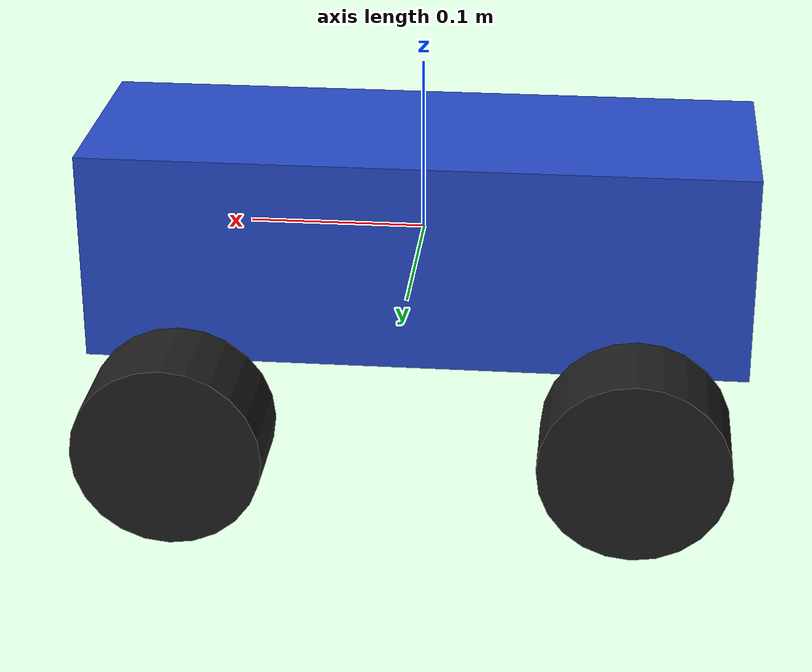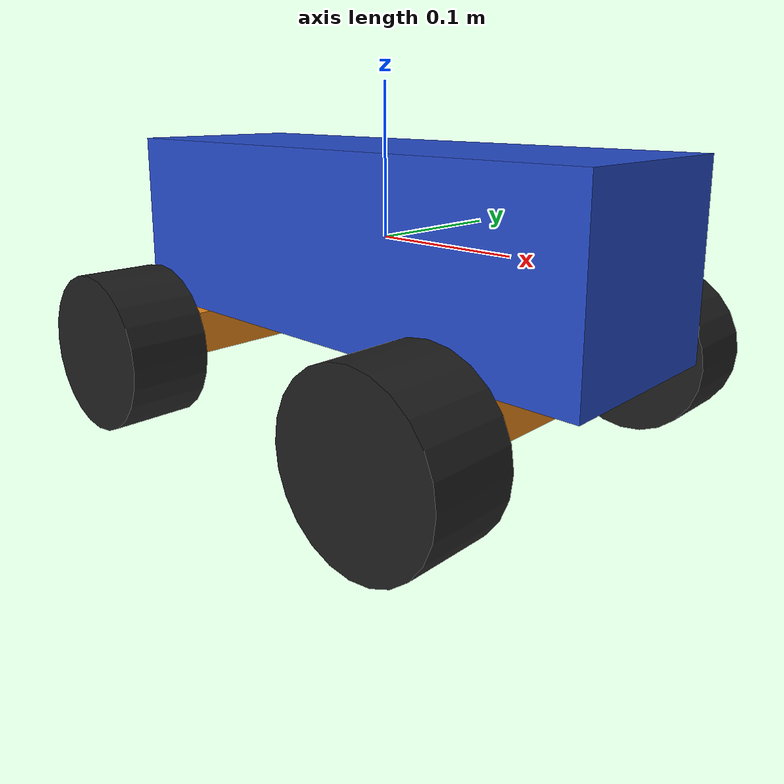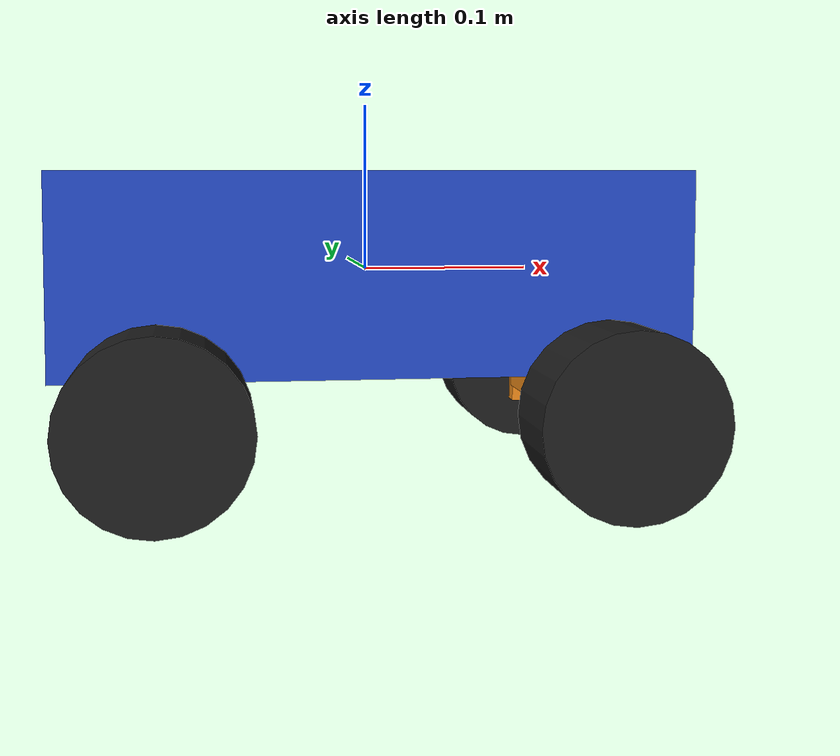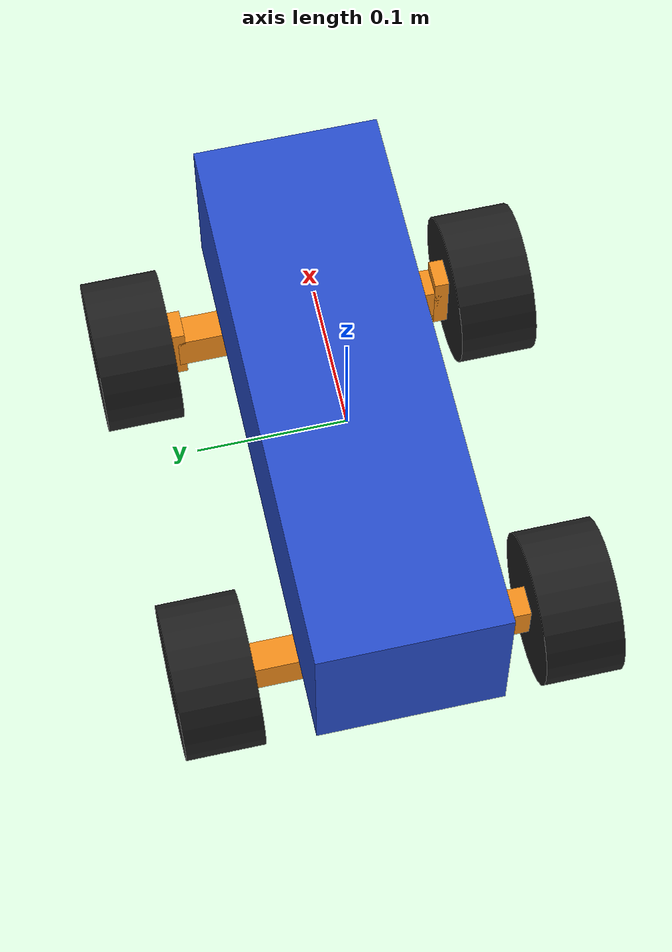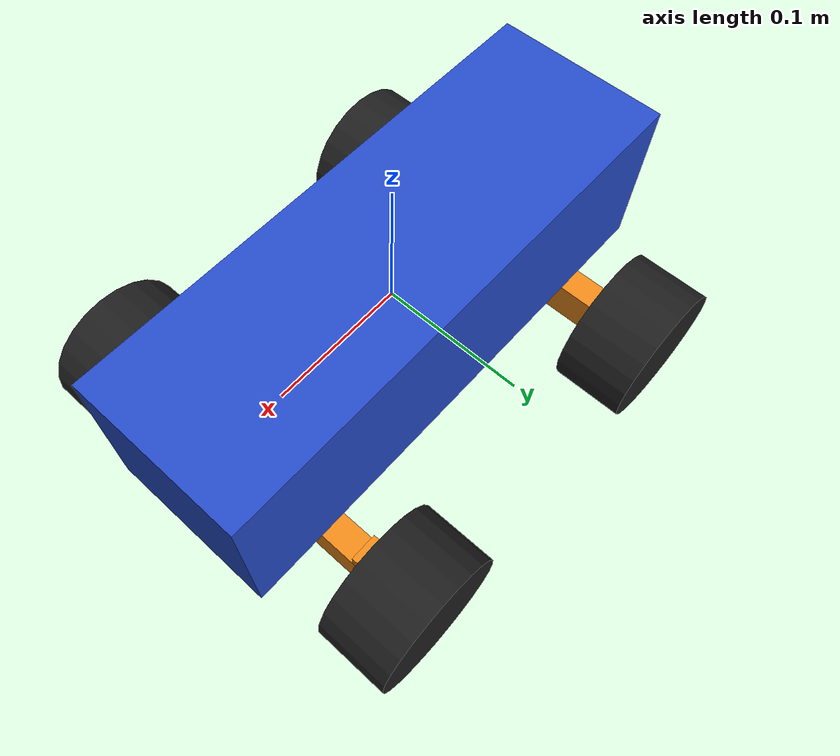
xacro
<?xml version="1.0"?>
<robot xmlns:xacro="http://www.ros.org/wiki/xacro">

    <!-- Example link -->
    <xacro:include filename="inertial_macros.xacro"/>

    <xacro:property name="rad_w" value="0.052"/>
    <xacro:property name="le_w" value="0.053"/>
    <xacro:property name="ly" value="0.125"/>
    <xacro:property name="lx" value="0.375"/>
    <xacro:property name="lz" value="0.12"/>
    <xacro:property name="lx_st" value="0.02"/>
    <xacro:property name="ly_st" value="${ly*3/2}"/>
    <xacro:property name="lz_st" value="0.03 "/>
    <xacro:property name="lx_arm" value="0.02"/>
    <xacro:property name="ly_arm" value="${0.01}"/>
    <xacro:property name="lz_arm" value="0.05"/>

    <xacro:macro name="box_macro" params="
      name
      x y z
      mass
      material">

    <link name="${name}">
      <visual>
        <origin xyz="0 0 0" rpy="0 0 0"/>
        <geometry>
          <box size="${x} ${y} ${z}"/>
        </geometry>
        <material name="${material}"/>
      </visual>

      <collision>
        <origin xyz="0 0 0" rpy="0 0 0"/>
        <geometry>
          <box size="${x} ${y} ${z}"/>
        </geometry>
      </collision>

      <xacro:inertial_box mass="${mass}" x="${x}" y="${y}" z="${z}">
        <origin xyz="0 0 0" rpy="0 0 0"/>
      </xacro:inertial_box>
    </link>
    </xacro:macro>

    <xacro:macro name="wheel_macro" params="
      name
      radius
      width
      mass
      material">

    <link name="${name}">
      <visual>
        <origin xyz="0 0 0" rpy="0 0 0"/>
        <geometry>
          <cylinder radius="${radius}" length="${width}"/>
        </geometry>
        <material name="${material}"/>
      </visual>

      <collision>
        <origin xyz="0 0 0" rpy="0 0 0"/>
        <geometry>
          <cylinder radius="${radius}" length="${width}"/>
        </geometry>
      </collision>

      <xacro:inertial_cylinder
          mass="${mass}"
          radius="${radius}"
          length="${width}">
        <origin xyz="0 0 0" rpy="0 0 0"/>
      </xacro:inertial_cylinder>
    </link>

  </xacro:macro>

    <!-- Example link -->
    <link name="base_link">
    </link>

    <joint name="base_link_joint" type="fixed">
        <parent link="base_link"/>
        <child link="chassis"/>
        <origin xyz="0 0 0"/>
    </joint>

    <!-- chassis link -->
    <xacro:box_macro
    name="chassis"
    x="${lx}"
    y="${ly}"
    z="${lz}"
    mass="5.0"
    material="blue"/>

        <!-- steering link joint -->
    <joint name="steering_link_joint" type="fixed">
        <parent link="chassis"/>
        <child link="steering"/>
        <origin xyz="${lx/3} 0.0 -${(lz + lz_st)/2}" rpy="0 0 0"/>
        <axis xyz="0 0 1"/>
        <dynamics damping="0.2" friction="0.0"/>
    </joint>

      <!-- Steering link -->
    <xacro:box_macro
    name="steering"
    x="${lx_st}"
    y="${ly_st}"
    z="${lz_st}"
    mass="1.0"
    material="orange"/>

    <!-- non-steering link joint -->
    <joint name="nonsteering_link_joint" type="fixed">
        <parent link="chassis"/>
        <child link="nonsteering"/>
        <origin xyz="-${lx/3} 0.0 -${(lz + lz_st)/2}" rpy="0 0 0"/>
        <axis xyz="0 0 1"/>
        <dynamics damping="0.2" friction="0.0"/>
    </joint>

      <!-- Nonsteering link -->
    <xacro:box_macro
    name="nonsteering"
    x="${lx_st}"
    y="${ly_st}"
    z="${lz_st}"
    mass="1.0"
    material="orange"/>

    <!-- Steering arm left joint-->
    <joint name="left_steering_arm_joint" type="revolute">
        <parent link="steering"/>
        <child link="left_steering_arm"/>
        <origin xyz="0 ${ly_st/2} 0"/>
        <axis xyz="0 0 1"/>
        <limit lower="-0.6" upper="0.6" effort="10" velocity="1"/>
    </joint>

    <!-- Steering arm front left -->
    <xacro:box_macro
    name="left_steering_arm"
    x="${lx_arm}"
    y="${ly_arm}"
    z="${lz_arm}"
    mass="1.0"
    material="orange"/>

    <!-- left front wheel joint -->
    <joint name="left_front_wheel_spinning_joint" type="continuous">
        <parent link="left_steering_arm"/>
        <child link="left_front_wheel"/>
        <origin xyz="0.0 ${ly_arm/2+le_w/2} 0.0" rpy="-${pi/2} 0 0"/>
        <axis xyz="0 0 1"/>
        <dynamics damping="0.2" friction="0.0"/>
    </joint>

    <!-- left front wheel link -->
    <xacro:wheel_macro
    name="left_front_wheel"
    radius="${rad_w}"
    width="${le_w}"
    mass="0.1"
    material="black"/>

        <!-- left back wheel joint -->
    <joint name="left_back_wheel_joint" type="continuous">
        <parent link="nonsteering"/>
        <child link="left_back_wheel"/>
        <origin xyz="0.0 ${ly_st/2+le_w/2} 0.0" rpy="-${pi/2} 0 0"/>
        <axis xyz="0 0 1"/>
        <dynamics damping="0.2" friction="0.0"/>
    </joint>

    <!-- left back wheel link -->
    <xacro:wheel_macro
    name="left_back_wheel"
    radius="${rad_w}"
    width="${le_w}"
    mass="0.1"
    material="black"/>

        <!-- Steering arm left joint-->
    <joint name="right_steering_arm_joint" type="revolute">
        <parent link="steering"/>
        <child link="right_steering_arm"/>
        <origin xyz="0 -${ly_st/2} 0"/>
        <axis xyz="0 0 1"/>
        <limit lower="-0.6" upper="0.6" effort="10" velocity="1"/>
    </joint>

    <!-- Steering arm front left -->
    <xacro:box_macro
    name="right_steering_arm"
    x="${lx_arm}"
    y="${ly_arm}"
    z="${lz_arm}"
    mass="1.0"
    material="orange"/>

    <!-- right front wheel joint -->
    <joint name="right_front_wheel_spinning_joint" type="continuous">
        <parent link="right_steering_arm"/>
        <child link="right_front_wheel"/>
        <origin xyz="0.0 -${ly_arm/2+le_w/2} 0.0" rpy="${pi/2} 0 0"/>
        <axis xyz="0 0 -1"/>
        <dynamics damping="0.2" friction="0.0"/>
    </joint>

    <!-- right front wheel link -->
    <xacro:wheel_macro
    name="right_front_wheel"
    radius="${rad_w}"
    width="${le_w}"
    mass="0.1"
    material="black"/>

        <!-- right back wheel joint -->
    <joint name="right_back_wheel_joint" type="continuous">
        <parent link="nonsteering"/>
        <child link="right_back_wheel"/>
        <origin xyz="0.0 -${ly_st/2+le_w/2} 0.0" rpy="${pi/2} 0 0"/>
        <axis xyz="0 0 -1"/>
        <dynamics damping="0.2" friction="0.0"/>
    </joint>

    <!-- right back wheel link -->
    <xacro:wheel_macro
    name="right_back_wheel"
    radius="${rad_w}"
    width="${le_w}"
    mass="0.1"
    material="black"/>

</robot>
